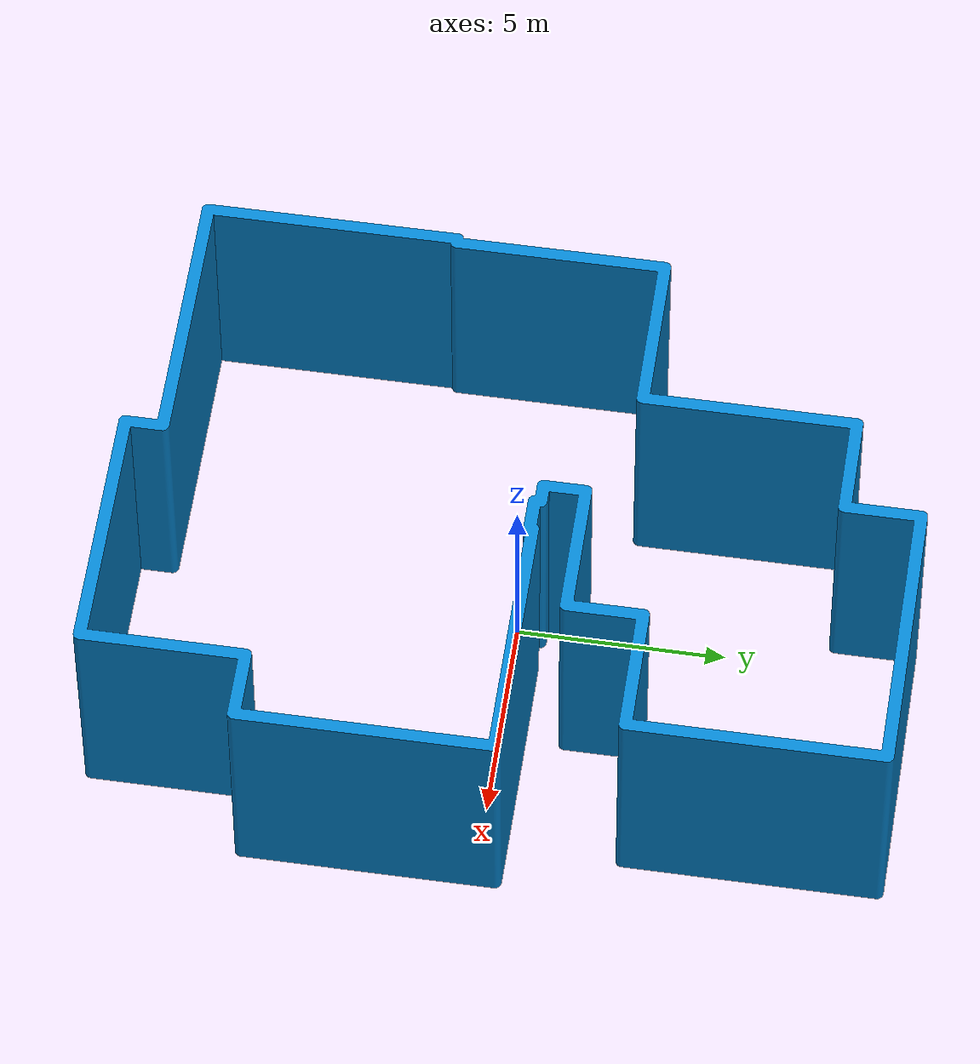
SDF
<?xml version="1.0" ?>
<sdf version="1.6">
  <model name="walls_8">
    <pose frame="">0 0 3 0 -0 0</pose>
    <static>1</static>
    <self_collide>0</self_collide>
    <allow_auto_disable>0</allow_auto_disable>
    <link name="mesh">
      <kinematic>0</kinematic>
      <gravity>1</gravity>
      <self_collide>0</self_collide>
      <collision name="collision">
        <geometry>
          <mesh>
            <uri>model://walls_8/meshes/THKzzYzZbQ.stl</uri>
            <scale>1 1 1</scale>
          </mesh>
        </geometry>
        <pose frame="">4.56648 3.98176 -3 0 -0 0</pose>
        <max_contacts>20</max_contacts>
      </collision>
      <visual name="visual">
        <geometry>
          <mesh>
            <uri>model://walls_8/meshes/nVKLcmpJyw.stl</uri>
            <scale>1 1 1</scale>
          </mesh>
        </geometry>
        <material>
          <ambient>0.0156863 0.521569 0.819608 1</ambient>
          <diffuse>0.01568627450980392 0.5215686274509804 0.8196078431372549 1</diffuse>
        </material>
        <pose frame="">4.56648 3.98176 -3 0 -0 0</pose>
        <cast_shadows>1</cast_shadows>
        <transparency>0.0</transparency>
      </visual>
      <pose frame="">0 0 0 0 -0 0</pose>
    </link>
  </model>
</sdf>
